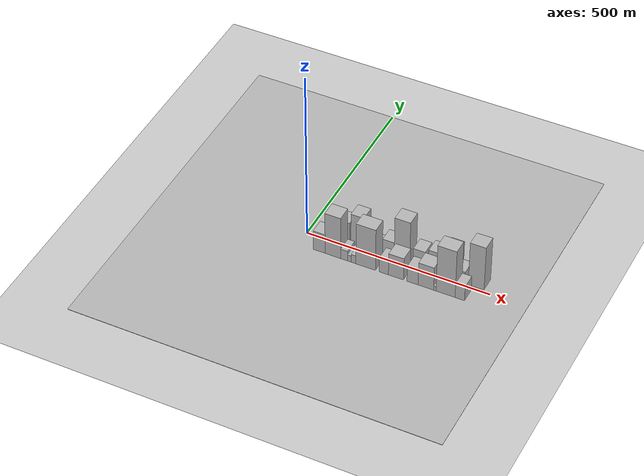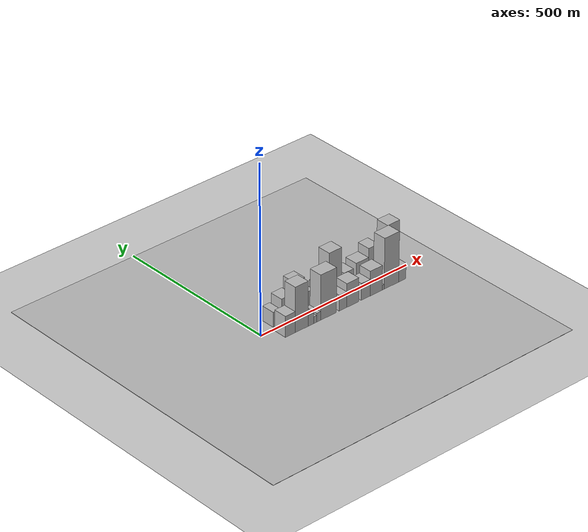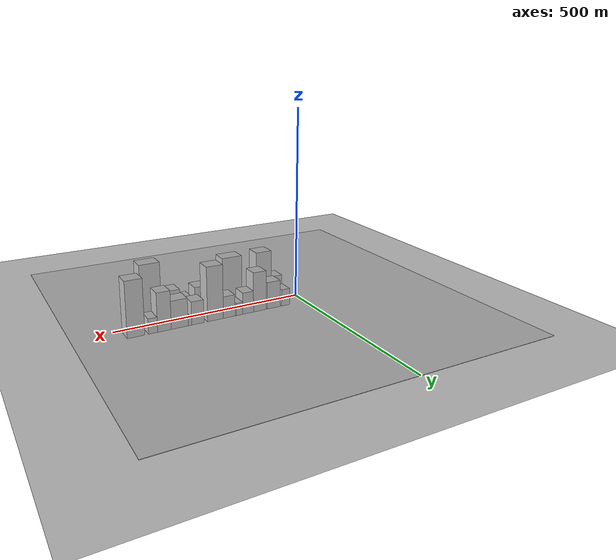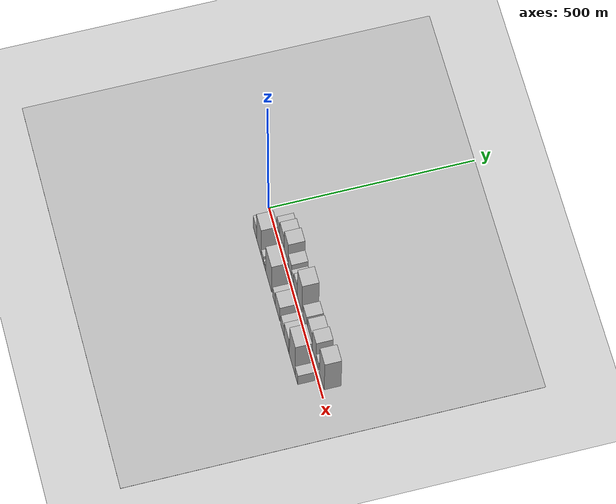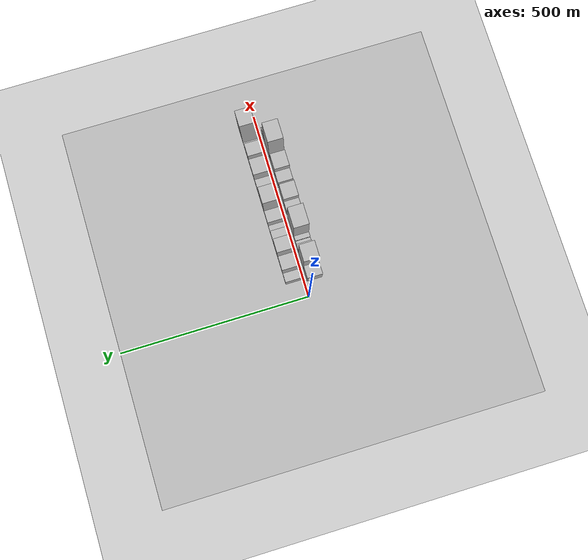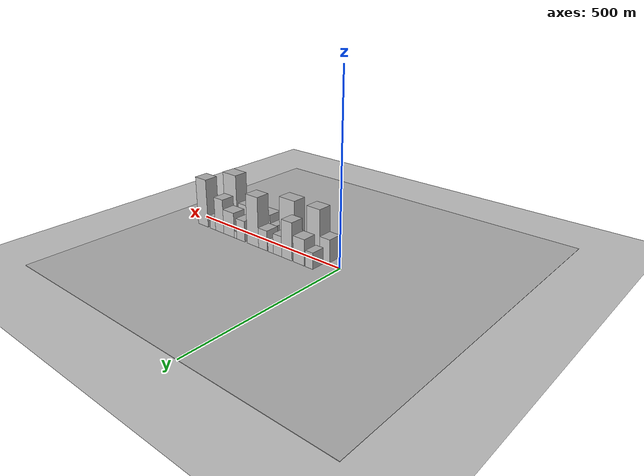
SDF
<?xml version="1.0" encoding="utf-8"?>

<sdf version="1.6">

   <world name="default">

      <gui fullscreen="0">

         <camera name="user_camera">

            <pose>-15 0 4.57585 0 0 0</pose>

            <view_controller>orbit</view_controller>

         </camera>

      </gui>

      <scene>

         <sky>

           <clouds>

             <speed>12</speed>

           </clouds>

         </sky>

         <ambient>0.4 0.4 0.4 1</ambient>

         <background>0.7 0.7 0.7 1</background>

         <shadows>1</shadows>

      </scene>

      <gravity>0 0 -9.8066</gravity>

      <magnetic_field>6e-06 2.3e-05 -4.2e-05</magnetic_field>

      <physics default="0" name="default_physics" type="ode">

         <ode>

            <solver>

               <type>quick</type>

               <iters>10</iters>

               <sor>1.0</sor>

               <use_dynamic_moi_rescaling>0</use_dynamic_moi_rescaling>

            </solver>

            <constraints>

               <cfm>0</cfm>

               <erp>0.2</erp>

               <contact_max_correcting_vel>100</contact_max_correcting_vel>

               <contact_surface_layer>0.001</contact_surface_layer>

            </constraints>

         </ode>

         <max_step_size>0.004</max_step_size>

         <real_time_factor>1</real_time_factor>

         <real_time_update_rate>250</real_time_update_rate>

      </physics>

      <light name="sun" type="directional">

         <cast_shadows>1</cast_shadows>

         <pose>0 0 10 0 0 0</pose>

         <diffuse>0.8 0.8 0.8 1</diffuse>

         <specular>0.2 0.2 0.2 1</specular>

         <attenuation>

            <range>1000</range>

            <constant>0.9</constant>

            <linear>0.01</linear>

            <quadratic>0.001</quadratic>

         </attenuation>

         <direction>-0.5 0.1 -0.9</direction>

      </light>

      <include>

         <name>ground_plane_1</name>

         <uri>model://HANNAS_ground_plane</uri>

         <pose>0 0 0  0 0 0</pose>

      </include>

      <include>

         <name>ground_plane_2</name>

         <uri>model://HANNAS_ground_plane</uri>

         <pose>100 0 0  0 0 0</pose>

      </include>

      <model name="building_1">

         <static>1</static>

         <pose frame="">60.0009 27.5000 0 0.000000 0.000000 1.570796</pose>

         <link name="link">

            <pose frame="">0 0 22.50 0 0 0</pose>

            <collision name="collision">

               <geometry>

                  <box>

                     <size>40.0000 24.0019 45.0000</size>

                  </box>

               </geometry>

               <max_contacts>10</max_contacts>

               <surface>

                  <contact>

                     <ode/>

                  </contact>

                  <bounce/>

                  <friction>

                     <torsional>

                        <ode/>

                     </torsional>

                     <ode/>

                  </friction>

               </surface>

            </collision>

            <visual name="visual">

               <cast_shadows>0</cast_shadows>

               <geometry>

                  <box>

                     <size>40.0000 24.0019 45.0000</size>

                  </box>

               </geometry>

               <material>

                  <script>

                     <uri>model://HANNAS_wall/materials/scripts</uri>

                     <uri>model://HANNAS_wall/materials/textures</uri>

                     <name>vrc/HANNAS_wall</name>

                  </script>

               </material>

            </visual>

            <self_collide>0</self_collide>

            <enable_wind>0</enable_wind>

            <kinematic>0</kinematic>

         </link>

      </model>

      <model name="building_2">

         <static>1</static>

         <pose frame="">94.6511 27.5000 0 0.000000 0.000000 1.570796</pose>

         <link name="link">

            <pose frame="">0 0 36.00 0 0 0</pose>

            <collision name="collision">

               <geometry>

                  <box>

                     <size>40.0000 37.2985 72.0000</size>

                  </box>

               </geometry>

               <max_contacts>10</max_contacts>

               <surface>

                  <contact>

                     <ode/>

                  </contact>

                  <bounce/>

                  <friction>

                     <torsional>

                        <ode/>

                     </torsional>

                     <ode/>

                  </friction>

               </surface>

            </collision>

            <visual name="visual">

               <cast_shadows>0</cast_shadows>

               <geometry>

                  <box>

                     <size>40.0000 37.2985 72.0000</size>

                  </box>

               </geometry>

               <material>

                  <script>

                     <uri>model://HANNAS_wall/materials/scripts</uri>

                     <uri>model://HANNAS_wall/materials/textures</uri>

                     <name>vrc/HANNAS_wall</name>

                  </script>

               </material>

            </visual>

            <self_collide>0</self_collide>

            <enable_wind>0</enable_wind>

            <kinematic>0</kinematic>

         </link>

      </model>

      <model name="building_3">

         <static>1</static>

         <pose frame="">135.1758 27.5000 0 0.000000 0.000000 1.570796</pose>

         <link name="link">

            <pose frame="">0 0 52.50 0 0 0</pose>

            <collision name="collision">

               <geometry>

                  <box>

                     <size>40.0000 35.7508 105.0000</size>

                  </box>

               </geometry>

               <max_contacts>10</max_contacts>

               <surface>

                  <contact>

                     <ode/>

                  </contact>

                  <bounce/>

                  <friction>

                     <torsional>

                        <ode/>

                     </torsional>

                     <ode/>

                  </friction>

               </surface>

            </collision>

            <visual name="visual">

               <cast_shadows>0</cast_shadows>

               <geometry>

                  <box>

                     <size>40.0000 35.7508 105.0000</size>

                  </box>

               </geometry>

               <material>

                  <script>

                     <uri>model://HANNAS_wall/materials/scripts</uri>

                     <uri>model://HANNAS_wall/materials/textures</uri>

                     <name>vrc/HANNAS_wall</name>

                  </script>

               </material>

            </visual>

            <self_collide>0</self_collide>

            <enable_wind>0</enable_wind>

            <kinematic>0</kinematic>

         </link>

      </model>

      <model name="building_4">

         <static>1</static>

         <pose frame="">167.9409 27.5000 0 0.000000 0.000000 1.570796</pose>

         <link name="link">

            <pose frame="">0 0 28.50 0 0 0</pose>

            <collision name="collision">

               <geometry>

                  <box>

                     <size>40.0000 29.7795 57.0000</size>

                  </box>

               </geometry>

               <max_contacts>10</max_contacts>

               <surface>

                  <contact>

                     <ode/>

                  </contact>

                  <bounce/>

                  <friction>

                     <torsional>

                        <ode/>

                     </torsional>

                     <ode/>

                  </friction>

               </surface>

            </collision>

            <visual name="visual">

               <cast_shadows>0</cast_shadows>

               <geometry>

                  <box>

                     <size>40.0000 29.7795 57.0000</size>

                  </box>

               </geometry>

               <material>

                  <script>

                     <uri>model://HANNAS_wall/materials/scripts</uri>

                     <uri>model://HANNAS_wall/materials/textures</uri>

                     <name>vrc/HANNAS_wall</name>

                  </script>

               </material>

            </visual>

            <self_collide>0</self_collide>

            <enable_wind>0</enable_wind>

            <kinematic>0</kinematic>

         </link>

      </model>

      <model name="building_5">

         <static>1</static>

         <pose frame="">192.2380 27.5000 0 0.000000 0.000000 1.570796</pose>

         <link name="link">

            <pose frame="">0 0 16.50 0 0 0</pose>

            <collision name="collision">

               <geometry>

                  <box>

                     <size>40.0000 18.8147 33.0000</size>

                  </box>

               </geometry>

               <max_contacts>10</max_contacts>

               <surface>

                  <contact>

                     <ode/>

                  </contact>

                  <bounce/>

                  <friction>

                     <torsional>

                        <ode/>

                     </torsional>

                     <ode/>

                  </friction>

               </surface>

            </collision>

            <visual name="visual">

               <cast_shadows>0</cast_shadows>

               <geometry>

                  <box>

                     <size>40.0000 18.8147 33.0000</size>

                  </box>

               </geometry>

               <material>

                  <script>

                     <uri>model://HANNAS_wall/materials/scripts</uri>

                     <uri>model://HANNAS_wall/materials/textures</uri>

                     <name>vrc/HANNAS_wall</name>

                  </script>

               </material>

            </visual>

            <self_collide>0</self_collide>

            <enable_wind>0</enable_wind>

            <kinematic>0</kinematic>

         </link>

      </model>

      <model name="building_6">

         <static>1</static>

         <pose frame="">220.6349 27.5000 0 0.000000 0.000000 1.570796</pose>

         <link name="link">

            <pose frame="">0 0 28.50 0 0 0</pose>

            <collision name="collision">

               <geometry>

                  <box>

                     <size>40.0000 31.9791 57.0000</size>

                  </box>

               </geometry>

               <max_contacts>10</max_contacts>

               <surface>

                  <contact>

                     <ode/>

                  </contact>

                  <bounce/>

                  <friction>

                     <torsional>

                        <ode/>

                     </torsional>

                     <ode/>

                  </friction>

               </surface>

            </collision>

            <visual name="visual">

               <cast_shadows>0</cast_shadows>

               <geometry>

                  <box>

                     <size>40.0000 31.9791 57.0000</size>

                  </box>

               </geometry>

               <material>

                  <script>

                     <uri>model://HANNAS_wall/materials/scripts</uri>

                     <uri>model://HANNAS_wall/materials/textures</uri>

                     <name>vrc/HANNAS_wall</name>

                  </script>

               </material>

            </visual>

            <self_collide>0</self_collide>

            <enable_wind>0</enable_wind>

            <kinematic>0</kinematic>

         </link>

      </model>

      <model name="building_7">

         <static>1</static>

         <pose frame="">257.9094 27.5000 0 0.000000 0.000000 1.570796</pose>

         <link name="link">

            <pose frame="">0 0 70.50 0 0 0</pose>

            <collision name="collision">

               <geometry>

                  <box>

                     <size>40.0000 42.5698 141.0000</size>

                  </box>

               </geometry>

               <max_contacts>10</max_contacts>

               <surface>

                  <contact>

                     <ode/>

                  </contact>

                  <bounce/>

                  <friction>

                     <torsional>

                        <ode/>

                     </torsional>

                     <ode/>

                  </friction>

               </surface>

            </collision>

            <visual name="visual">

               <cast_shadows>0</cast_shadows>

               <geometry>

                  <box>

                     <size>40.0000 42.5698 141.0000</size>

                  </box>

               </geometry>

               <material>

                  <script>

                     <uri>model://HANNAS_wall/materials/scripts</uri>

                     <uri>model://HANNAS_wall/materials/textures</uri>

                     <name>vrc/HANNAS_wall</name>

                  </script>

               </material>

            </visual>

            <self_collide>0</self_collide>

            <enable_wind>0</enable_wind>

            <kinematic>0</kinematic>

         </link>

      </model>

      <model name="building_8">

         <static>1</static>

         <pose frame="">304.3953 27.5000 0 0.000000 0.000000 1.570796</pose>

         <link name="link">

            <pose frame="">0 0 30.00 0 0 0</pose>

            <collision name="collision">

               <geometry>

                  <box>

                     <size>40.0000 32.4019 60.0000</size>

                  </box>

               </geometry>

               <max_contacts>10</max_contacts>

               <surface>

                  <contact>

                     <ode/>

                  </contact>

                  <bounce/>

                  <friction>

                     <torsional>

                        <ode/>

                     </torsional>

                     <ode/>

                  </friction>

               </surface>

            </collision>

            <visual name="visual">

               <cast_shadows>0</cast_shadows>

               <geometry>

                  <box>

                     <size>40.0000 32.4019 60.0000</size>

                  </box>

               </geometry>

               <material>

                  <script>

                     <uri>model://HANNAS_wall/materials/scripts</uri>

                     <uri>model://HANNAS_wall/materials/textures</uri>

                     <name>vrc/HANNAS_wall</name>

                  </script>

               </material>

            </visual>

            <self_collide>0</self_collide>

            <enable_wind>0</enable_wind>

            <kinematic>0</kinematic>

         </link>

      </model>

      <model name="building_9">

         <static>1</static>

         <pose frame="">325.1874 27.5000 0 0.000000 0.000000 1.570796</pose>

         <link name="link">

            <pose frame="">0 0 10.50 0 0 0</pose>

            <collision name="collision">

               <geometry>

                  <box>

                     <size>40.0000 9.1823 21.0000</size>

                  </box>

               </geometry>

               <max_contacts>10</max_contacts>

               <surface>

                  <contact>

                     <ode/>

                  </contact>

                  <bounce/>

                  <friction>

                     <torsional>

                        <ode/>

                     </torsional>

                     <ode/>

                  </friction>

               </surface>

            </collision>

            <visual name="visual">

               <cast_shadows>0</cast_shadows>

               <geometry>

                  <box>

                     <size>40.0000 9.1823 21.0000</size>

                  </box>

               </geometry>

               <material>

                  <script>

                     <uri>model://HANNAS_wall/materials/scripts</uri>

                     <uri>model://HANNAS_wall/materials/textures</uri>

                     <name>vrc/HANNAS_wall</name>

                  </script>

               </material>

            </visual>

            <self_collide>0</self_collide>

            <enable_wind>0</enable_wind>

            <kinematic>0</kinematic>

         </link>

      </model>

      <model name="building_10">

         <static>1</static>

         <pose frame="">351.1280 27.5000 0 0.000000 0.000000 1.570796</pose>

         <link name="link">

            <pose frame="">0 0 36.00 0 0 0</pose>

            <collision name="collision">

               <geometry>

                  <box>

                     <size>40.0000 42.6989 72.0000</size>

                  </box>

               </geometry>

               <max_contacts>10</max_contacts>

               <surface>

                  <contact>

                     <ode/>

                  </contact>

                  <bounce/>

                  <friction>

                     <torsional>

                        <ode/>

                     </torsional>

                     <ode/>

                  </friction>

               </surface>

            </collision>

            <visual name="visual">

               <cast_shadows>0</cast_shadows>

               <geometry>

                  <box>

                     <size>40.0000 42.6989 72.0000</size>

                  </box>

               </geometry>

               <material>

                  <script>

                     <uri>model://HANNAS_wall/materials/scripts</uri>

                     <uri>model://HANNAS_wall/materials/textures</uri>

                     <name>vrc/HANNAS_wall</name>

                  </script>

               </material>

            </visual>

            <self_collide>0</self_collide>

            <enable_wind>0</enable_wind>

            <kinematic>0</kinematic>

         </link>

      </model>

      <model name="building_11">

         <static>1</static>

         <pose frame="">389.5575 27.5000 0 0.000000 0.000000 1.570796</pose>

         <link name="link">

            <pose frame="">0 0 49.50 0 0 0</pose>

            <collision name="collision">

               <geometry>

                  <box>

                     <size>40.0000 34.1600 99.0000</size>

                  </box>

               </geometry>

               <max_contacts>10</max_contacts>

               <surface>

                  <contact>

                     <ode/>

                  </contact>

                  <bounce/>

                  <friction>

                     <torsional>

                        <ode/>

                     </torsional>

                     <ode/>

                  </friction>

               </surface>

            </collision>

            <visual name="visual">

               <cast_shadows>0</cast_shadows>

               <geometry>

                  <box>

                     <size>40.0000 34.1600 99.0000</size>

                  </box>

               </geometry>

               <material>

                  <script>

                     <uri>model://HANNAS_wall/materials/scripts</uri>

                     <uri>model://HANNAS_wall/materials/textures</uri>

                     <name>vrc/HANNAS_wall</name>

                  </script>

               </material>

            </visual>

            <self_collide>0</self_collide>

            <enable_wind>0</enable_wind>

            <kinematic>0</kinematic>

         </link>

      </model>

      <model name="building_12">

         <static>1</static>

         <pose frame="">417.7652 27.5000 0 0.000000 0.000000 1.570796</pose>

         <link name="link">

            <pose frame="">0 0 19.50 0 0 0</pose>

            <collision name="collision">

               <geometry>

                  <box>

                     <size>40.0000 22.2553 39.0000</size>

                  </box>

               </geometry>

               <max_contacts>10</max_contacts>

               <surface>

                  <contact>

                     <ode/>

                  </contact>

                  <bounce/>

                  <friction>

                     <torsional>

                        <ode/>

                     </torsional>

                     <ode/>

                  </friction>

               </surface>

            </collision>

            <visual name="visual">

               <cast_shadows>0</cast_shadows>

               <geometry>

                  <box>

                     <size>40.0000 22.2553 39.0000</size>

                  </box>

               </geometry>

               <material>

                  <script>

                     <uri>model://HANNAS_wall/materials/scripts</uri>

                     <uri>model://HANNAS_wall/materials/textures</uri>

                     <name>vrc/HANNAS_wall</name>

                  </script>

               </material>

            </visual>

            <self_collide>0</self_collide>

            <enable_wind>0</enable_wind>

            <kinematic>0</kinematic>

         </link>

      </model>

      <model name="building_13">

         <static>1</static>

         <pose frame="">459.0526 27.5000 0 0.000000 0.000000 1.570796</pose>

         <link name="link">

            <pose frame="">0 0 70.50 0 0 0</pose>

            <collision name="collision">

               <geometry>

                  <box>

                     <size>40.0000 42.3195 141.0000</size>

                  </box>

               </geometry>

               <max_contacts>10</max_contacts>

               <surface>

                  <contact>

                     <ode/>

                  </contact>

                  <bounce/>

                  <friction>

                     <torsional>

                        <ode/>

                     </torsional>

                     <ode/>

                  </friction>

               </surface>

            </collision>

            <visual name="visual">

               <cast_shadows>0</cast_shadows>

               <geometry>

                  <box>

                     <size>40.0000 42.3195 141.0000</size>

                  </box>

               </geometry>

               <material>

                  <script>

                     <uri>model://HANNAS_wall/materials/scripts</uri>

                     <uri>model://HANNAS_wall/materials/textures</uri>

                     <name>vrc/HANNAS_wall</name>

                  </script>

               </material>

            </visual>

            <self_collide>0</self_collide>

            <enable_wind>0</enable_wind>

            <kinematic>0</kinematic>

         </link>

      </model>

      <model name="building_14">

         <static>1</static>

         <pose frame="">56.3997 -27.5000 0 0.000000 0.000000 1.570796</pose>

         <link name="link">

            <pose frame="">0 0 31.50 0 0 0</pose>

            <collision name="collision">

               <geometry>

                  <box>

                     <size>40.0000 32.7993 63.0000</size>

                  </box>

               </geometry>

               <max_contacts>10</max_contacts>

               <surface>

                  <contact>

                     <ode/>

                  </contact>

                  <bounce/>

                  <friction>

                     <torsional>

                        <ode/>

                     </torsional>

                     <ode/>

                  </friction>

               </surface>

            </collision>

            <visual name="visual">

               <cast_shadows>0</cast_shadows>

               <geometry>

                  <box>

                     <size>40.0000 32.7993 63.0000</size>

                  </box>

               </geometry>

               <material>

                  <script>

                     <uri>model://HANNAS_wall/materials/scripts</uri>

                     <uri>model://HANNAS_wall/materials/textures</uri>

                     <name>vrc/HANNAS_wall</name>

                  </script>

               </material>

            </visual>

            <self_collide>0</self_collide>

            <enable_wind>0</enable_wind>

            <kinematic>0</kinematic>

         </link>

      </model>

      <model name="building_15">

         <static>1</static>

         <pose frame="">94.4734 -27.5000 0 0.000000 0.000000 1.570796</pose>

         <link name="link">

            <pose frame="">0 0 67.50 0 0 0</pose>

            <collision name="collision">

               <geometry>

                  <box>

                     <size>40.0000 43.3481 135.0000</size>

                  </box>

               </geometry>

               <max_contacts>10</max_contacts>

               <surface>

                  <contact>

                     <ode/>

                  </contact>

                  <bounce/>

                  <friction>

                     <torsional>

                        <ode/>

                     </torsional>

                     <ode/>

                  </friction>

               </surface>

            </collision>

            <visual name="visual">

               <cast_shadows>0</cast_shadows>

               <geometry>

                  <box>

                     <size>40.0000 43.3481 135.0000</size>

                  </box>

               </geometry>

               <material>

                  <script>

                     <uri>model://HANNAS_wall/materials/scripts</uri>

                     <uri>model://HANNAS_wall/materials/textures</uri>

                     <name>vrc/HANNAS_wall</name>

                  </script>

               </material>

            </visual>

            <self_collide>0</self_collide>

            <enable_wind>0</enable_wind>

            <kinematic>0</kinematic>

         </link>

      </model>

      <model name="building_16">

         <static>1</static>

         <pose frame="">125.6317 -27.5000 0 0.000000 0.000000 1.570796</pose>

         <link name="link">

            <pose frame="">0 0 16.50 0 0 0</pose>

            <collision name="collision">

               <geometry>

                  <box>

                     <size>40.0000 18.9686 33.0000</size>

                  </box>

               </geometry>

               <max_contacts>10</max_contacts>

               <surface>

                  <contact>

                     <ode/>

                  </contact>

                  <bounce/>

                  <friction>

                     <torsional>

                        <ode/>

                     </torsional>

                     <ode/>

                  </friction>

               </surface>

            </collision>

            <visual name="visual">

               <cast_shadows>0</cast_shadows>

               <geometry>

                  <box>

                     <size>40.0000 18.9686 33.0000</size>

                  </box>

               </geometry>

               <material>

                  <script>

                     <uri>model://HANNAS_wall/materials/scripts</uri>

                     <uri>model://HANNAS_wall/materials/textures</uri>

                     <name>vrc/HANNAS_wall</name>

                  </script>

               </material>

            </visual>

            <self_collide>0</self_collide>

            <enable_wind>0</enable_wind>

            <kinematic>0</kinematic>

         </link>

      </model>

      <model name="building_17">

         <static>1</static>

         <pose frame="">140.0199 -27.5000 0 0.000000 0.000000 1.570796</pose>

         <link name="link">

            <pose frame="">0 0 10.50 0 0 0</pose>

            <collision name="collision">

               <geometry>

                  <box>

                     <size>40.0000 9.8078 21.0000</size>

                  </box>

               </geometry>

               <max_contacts>10</max_contacts>

               <surface>

                  <contact>

                     <ode/>

                  </contact>

                  <bounce/>

                  <friction>

                     <torsional>

                        <ode/>

                     </torsional>

                     <ode/>

                  </friction>

               </surface>

            </collision>

            <visual name="visual">

               <cast_shadows>0</cast_shadows>

               <geometry>

                  <box>

                     <size>40.0000 9.8078 21.0000</size>

                  </box>

               </geometry>

               <material>

                  <script>

                     <uri>model://HANNAS_wall/materials/scripts</uri>

                     <uri>model://HANNAS_wall/materials/textures</uri>

                     <name>vrc/HANNAS_wall</name>

                  </script>

               </material>

            </visual>

            <self_collide>0</self_collide>

            <enable_wind>0</enable_wind>

            <kinematic>0</kinematic>

         </link>

      </model>

      <model name="building_18">

         <static>1</static>

         <pose frame="">151.4881 -27.5000 0 0.000000 0.000000 1.570796</pose>

         <link name="link">

            <pose frame="">0 0 13.50 0 0 0</pose>

            <collision name="collision">

               <geometry>

                  <box>

                     <size>40.0000 13.1286 27.0000</size>

                  </box>

               </geometry>

               <max_contacts>10</max_contacts>

               <surface>

                  <contact>

                     <ode/>

                  </contact>

                  <bounce/>

                  <friction>

                     <torsional>

                        <ode/>

                     </torsional>

                     <ode/>

                  </friction>

               </surface>

            </collision>

            <visual name="visual">

               <cast_shadows>0</cast_shadows>

               <geometry>

                  <box>

                     <size>40.0000 13.1286 27.0000</size>

                  </box>

               </geometry>

               <material>

                  <script>

                     <uri>model://HANNAS_wall/materials/scripts</uri>

                     <uri>model://HANNAS_wall/materials/textures</uri>

                     <name>vrc/HANNAS_wall</name>

                  </script>

               </material>

            </visual>

            <self_collide>0</self_collide>

            <enable_wind>0</enable_wind>

            <kinematic>0</kinematic>

         </link>

      </model>

      <model name="building_19">

         <static>1</static>

         <pose frame="">184.9693 -27.5000 0 0.000000 0.000000 1.570796</pose>

         <link name="link">

            <pose frame="">0 0 67.50 0 0 0</pose>

            <collision name="collision">

               <geometry>

                  <box>

                     <size>40.0000 53.8338 135.0000</size>

                  </box>

               </geometry>

               <max_contacts>10</max_contacts>

               <surface>

                  <contact>

                     <ode/>

                  </contact>

                  <bounce/>

                  <friction>

                     <torsional>

                        <ode/>

                     </torsional>

                     <ode/>

                  </friction>

               </surface>

            </collision>

            <visual name="visual">

               <cast_shadows>0</cast_shadows>

               <geometry>

                  <box>

                     <size>40.0000 53.8338 135.0000</size>

                  </box>

               </geometry>

               <material>

                  <script>

                     <uri>model://HANNAS_wall/materials/scripts</uri>

                     <uri>model://HANNAS_wall/materials/textures</uri>

                     <name>vrc/HANNAS_wall</name>

                  </script>

               </material>

            </visual>

            <self_collide>0</self_collide>

            <enable_wind>0</enable_wind>

            <kinematic>0</kinematic>

         </link>

      </model>

      <model name="building_20">

         <static>1</static>

         <pose frame="">234.4992 -27.5000 0 0.000000 0.000000 1.570796</pose>

         <link name="link">

            <pose frame="">0 0 24.00 0 0 0</pose>

            <collision name="collision">

               <geometry>

                  <box>

                     <size>40.0000 25.2259 48.0000</size>

                  </box>

               </geometry>

               <max_contacts>10</max_contacts>

               <surface>

                  <contact>

                     <ode/>

                  </contact>

                  <bounce/>

                  <friction>

                     <torsional>

                        <ode/>

                     </torsional>

                     <ode/>

                  </friction>

               </surface>

            </collision>

            <visual name="visual">

               <cast_shadows>0</cast_shadows>

               <geometry>

                  <box>

                     <size>40.0000 25.2259 48.0000</size>

                  </box>

               </geometry>

               <material>

                  <script>

                     <uri>model://HANNAS_wall/materials/scripts</uri>

                     <uri>model://HANNAS_wall/materials/textures</uri>

                     <name>vrc/HANNAS_wall</name>

                  </script>

               </material>

            </visual>

            <self_collide>0</self_collide>

            <enable_wind>0</enable_wind>

            <kinematic>0</kinematic>

         </link>

      </model>

      <model name="building_21">

         <static>1</static>

         <pose frame="">267.7643 -27.5000 0 0.000000 0.000000 1.570796</pose>

         <link name="link">

            <pose frame="">0 0 36.00 0 0 0</pose>

            <collision name="collision">

               <geometry>

                  <box>

                     <size>40.0000 41.3043 72.0000</size>

                  </box>

               </geometry>

               <max_contacts>10</max_contacts>

               <surface>

                  <contact>

                     <ode/>

                  </contact>

                  <bounce/>

                  <friction>

                     <torsional>

                        <ode/>

                     </torsional>

                     <ode/>

                  </friction>

               </surface>

            </collision>

            <visual name="visual">

               <cast_shadows>0</cast_shadows>

               <geometry>

                  <box>

                     <size>40.0000 41.3043 72.0000</size>

                  </box>

               </geometry>

               <material>

                  <script>

                     <uri>model://HANNAS_wall/materials/scripts</uri>

                     <uri>model://HANNAS_wall/materials/textures</uri>

                     <name>vrc/HANNAS_wall</name>

                  </script>

               </material>

            </visual>

            <self_collide>0</self_collide>

            <enable_wind>0</enable_wind>

            <kinematic>0</kinematic>

         </link>

      </model>

      <model name="building_22">

         <static>1</static>

         <pose frame="">312.4943 -27.5000 0 0.000000 0.000000 1.570796</pose>

         <link name="link">

            <pose frame="">0 0 25.50 0 0 0</pose>

            <collision name="collision">

               <geometry>

                  <box>

                     <size>40.0000 30.1557 51.0000</size>

                  </box>

               </geometry>

               <max_contacts>10</max_contacts>

               <surface>

                  <contact>

                     <ode/>

                  </contact>

                  <bounce/>

                  <friction>

                     <torsional>

                        <ode/>

                     </torsional>

                     <ode/>

                  </friction>

               </surface>

            </collision>

            <visual name="visual">

               <cast_shadows>0</cast_shadows>

               <geometry>

                  <box>

                     <size>40.0000 30.1557 51.0000</size>

                  </box>

               </geometry>

               <material>

                  <script>

                     <uri>model://HANNAS_wall/materials/scripts</uri>

                     <uri>model://HANNAS_wall/materials/textures</uri>

                     <name>vrc/HANNAS_wall</name>

                  </script>

               </material>

            </visual>

            <self_collide>0</self_collide>

            <enable_wind>0</enable_wind>

            <kinematic>0</kinematic>

         </link>

      </model>

      <model name="building_23">

         <static>1</static>

         <pose frame="">348.6315 -27.5000 0 0.000000 0.000000 1.570796</pose>

         <link name="link">

            <pose frame="">0 0 37.50 0 0 0</pose>

            <collision name="collision">

               <geometry>

                  <box>

                     <size>40.0000 42.1188 75.0000</size>

                  </box>

               </geometry>

               <max_contacts>10</max_contacts>

               <surface>

                  <contact>

                     <ode/>

                  </contact>

                  <bounce/>

                  <friction>

                     <torsional>

                        <ode/>

                     </torsional>

                     <ode/>

                  </friction>

               </surface>

            </collision>

            <visual name="visual">

               <cast_shadows>0</cast_shadows>

               <geometry>

                  <box>

                     <size>40.0000 42.1188 75.0000</size>

                  </box>

               </geometry>

               <material>

                  <script>

                     <uri>model://HANNAS_wall/materials/scripts</uri>

                     <uri>model://HANNAS_wall/materials/textures</uri>

                     <name>vrc/HANNAS_wall</name>

                  </script>

               </material>

            </visual>

            <self_collide>0</self_collide>

            <enable_wind>0</enable_wind>

            <kinematic>0</kinematic>

         </link>

      </model>

      <model name="building_24">

         <static>1</static>

         <pose frame="">372.9598 -27.5000 0 0.000000 0.000000 1.570796</pose>

         <link name="link">

            <pose frame="">0 0 7.50 0 0 0</pose>

            <collision name="collision">

               <geometry>

                  <box>

                     <size>40.0000 6.5377 15.0000</size>

                  </box>

               </geometry>

               <max_contacts>10</max_contacts>

               <surface>

                  <contact>

                     <ode/>

                  </contact>

                  <bounce/>

                  <friction>

                     <torsional>

                        <ode/>

                     </torsional>

                     <ode/>

                  </friction>

               </surface>

            </collision>

            <visual name="visual">

               <cast_shadows>0</cast_shadows>

               <geometry>

                  <box>

                     <size>40.0000 6.5377 15.0000</size>

                  </box>

               </geometry>

               <material>

                  <script>

                     <uri>model://HANNAS_wall/materials/scripts</uri>

                     <uri>model://HANNAS_wall/materials/textures</uri>

                     <name>vrc/HANNAS_wall</name>

                  </script>

               </material>

            </visual>

            <self_collide>0</self_collide>

            <enable_wind>0</enable_wind>

            <kinematic>0</kinematic>

         </link>

      </model>

      <model name="building_25">

         <static>1</static>

         <pose frame="">401.8196 -27.5000 0 0.000000 0.000000 1.570796</pose>

         <link name="link">

            <pose frame="">0 0 76.50 0 0 0</pose>

            <collision name="collision">

               <geometry>

                  <box>

                     <size>40.0000 51.1820 153.0000</size>

                  </box>

               </geometry>

               <max_contacts>10</max_contacts>

               <surface>

                  <contact>

                     <ode/>

                  </contact>

                  <bounce/>

                  <friction>

                     <torsional>

                        <ode/>

                     </torsional>

                     <ode/>

                  </friction>

               </surface>

            </collision>

            <visual name="visual">

               <cast_shadows>0</cast_shadows>

               <geometry>

                  <box>

                     <size>40.0000 51.1820 153.0000</size>

                  </box>

               </geometry>

               <material>

                  <script>

                     <uri>model://HANNAS_wall/materials/scripts</uri>

                     <uri>model://HANNAS_wall/materials/textures</uri>

                     <name>vrc/HANNAS_wall</name>

                  </script>

               </material>

            </visual>

            <self_collide>0</self_collide>

            <enable_wind>0</enable_wind>

            <kinematic>0</kinematic>

         </link>

      </model>

      <model name="building_26">

         <static>1</static>

         <pose frame="">439.9927 -27.5000 0 0.000000 0.000000 1.570796</pose>

         <link name="link">

            <pose frame="">0 0 24.00 0 0 0</pose>

            <collision name="collision">

               <geometry>

                  <box>

                     <size>40.0000 25.1641 48.0000</size>

                  </box>

               </geometry>

               <max_contacts>10</max_contacts>

               <surface>

                  <contact>

                     <ode/>

                  </contact>

                  <bounce/>

                  <friction>

                     <torsional>

                        <ode/>

                     </torsional>

                     <ode/>

                  </friction>

               </surface>

            </collision>

            <visual name="visual">

               <cast_shadows>0</cast_shadows>

               <geometry>

                  <box>

                     <size>40.0000 25.1641 48.0000</size>

                  </box>

               </geometry>

               <material>

                  <script>

                     <uri>model://HANNAS_wall/materials/scripts</uri>

                     <uri>model://HANNAS_wall/materials/textures</uri>

                     <name>vrc/HANNAS_wall</name>

                  </script>

               </material>

            </visual>

            <self_collide>0</self_collide>

            <enable_wind>0</enable_wind>

            <kinematic>0</kinematic>

         </link>

      </model>

   </world>

</sdf>

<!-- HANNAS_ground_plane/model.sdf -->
<sdf version="1.4">
<model name="HANNAS_ground_plane">
  <static>true</static>
    <link name="link">
      <collision name="collision">
        <geometry>
          <plane>
            <normal>0 0 1</normal>
            <size>1000 1000</size>
          </plane>
        </geometry>
        <surface>
          <friction>
            <ode>
              <mu>100</mu>
              <mu2>50</mu2>
            </ode>
          </friction>
        </surface>
      </collision>
      <visual name="visual">
        <cast_shadows>false</cast_shadows>
        <geometry>
          <plane>
            <normal>0 0 1</normal>
            <size>1000 1000</size>
          </plane>
        </geometry>
        <material>
          <script>
            <uri>model://HANNAS_ground_plane/materials/scripts/HANNAS_ground_plane.material</uri>
	    <uri>model://HANNAS_ground_plane/materials/textures</uri>
            <name>HANNASGroundPlane/Image</name>
          </script>
        </material>
      </visual>
    </link>
  </model>
</sdf>
